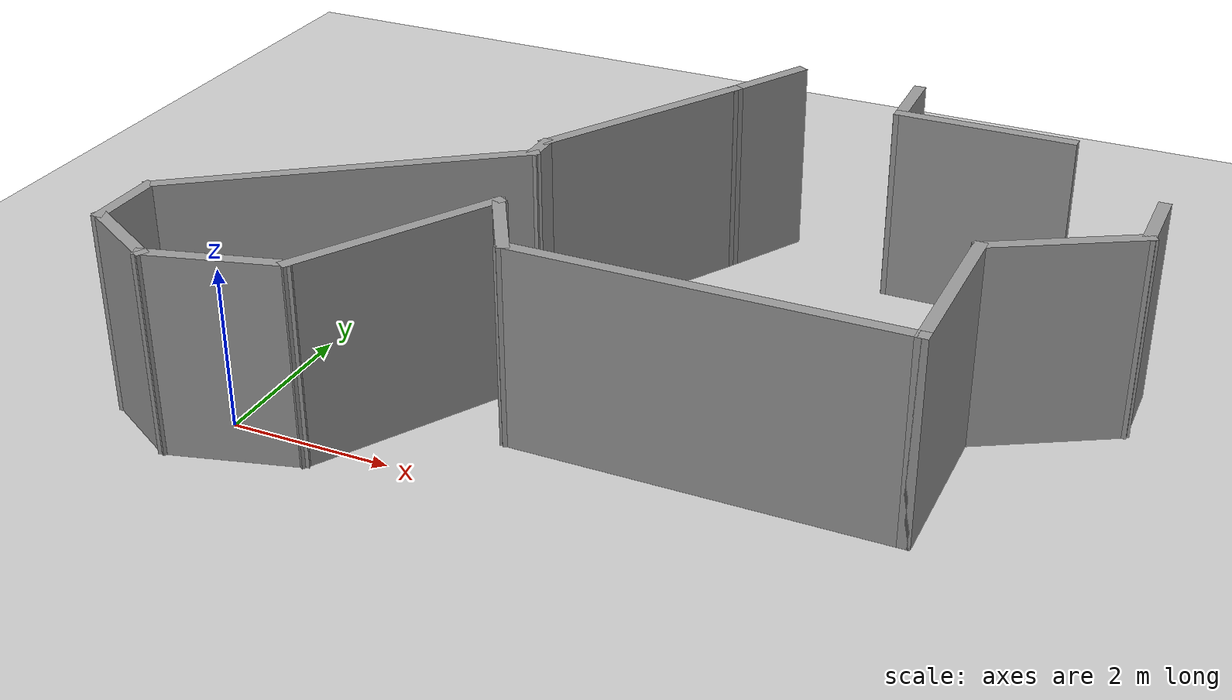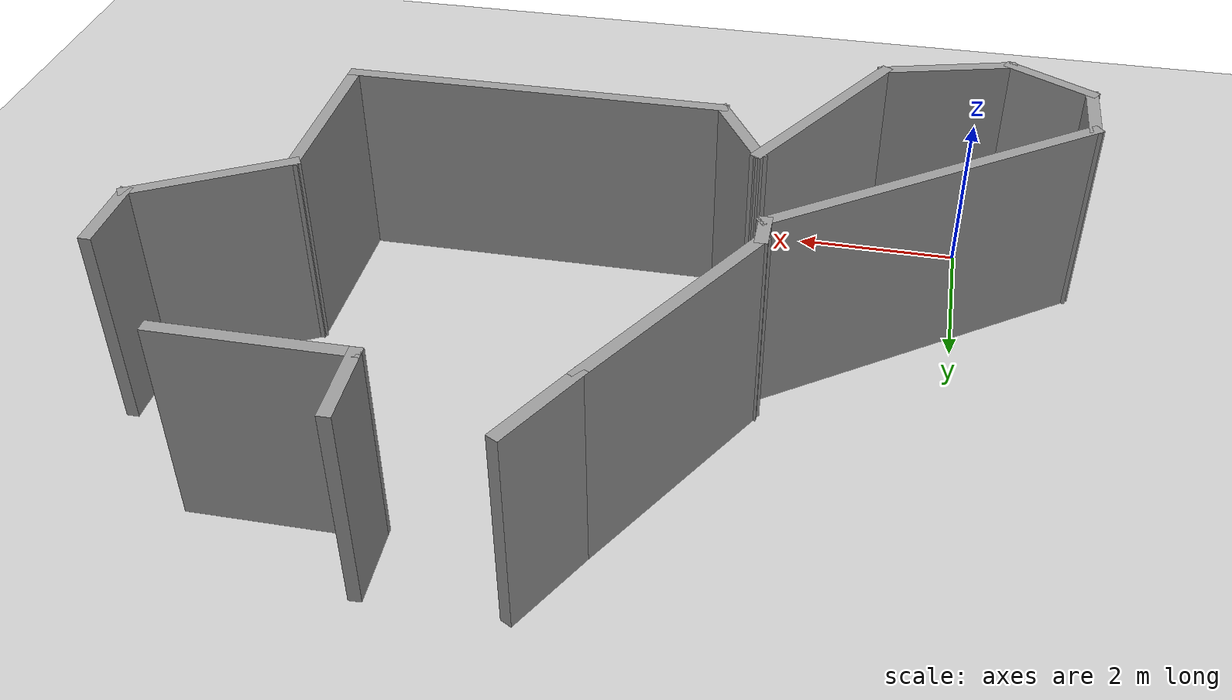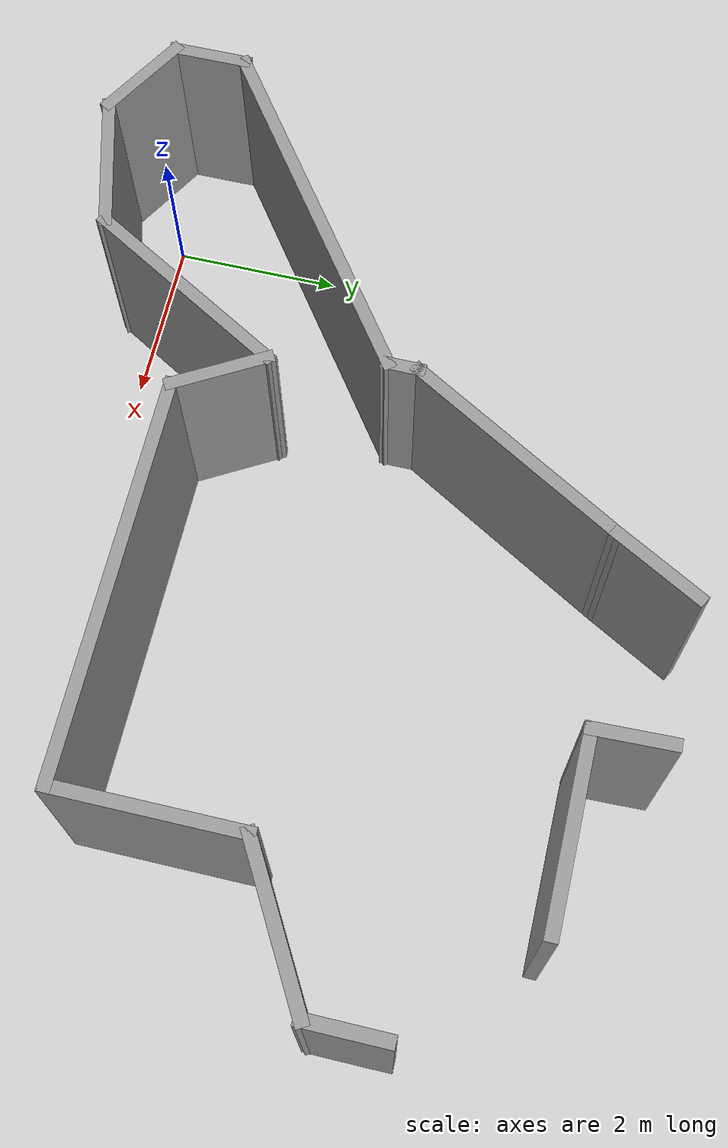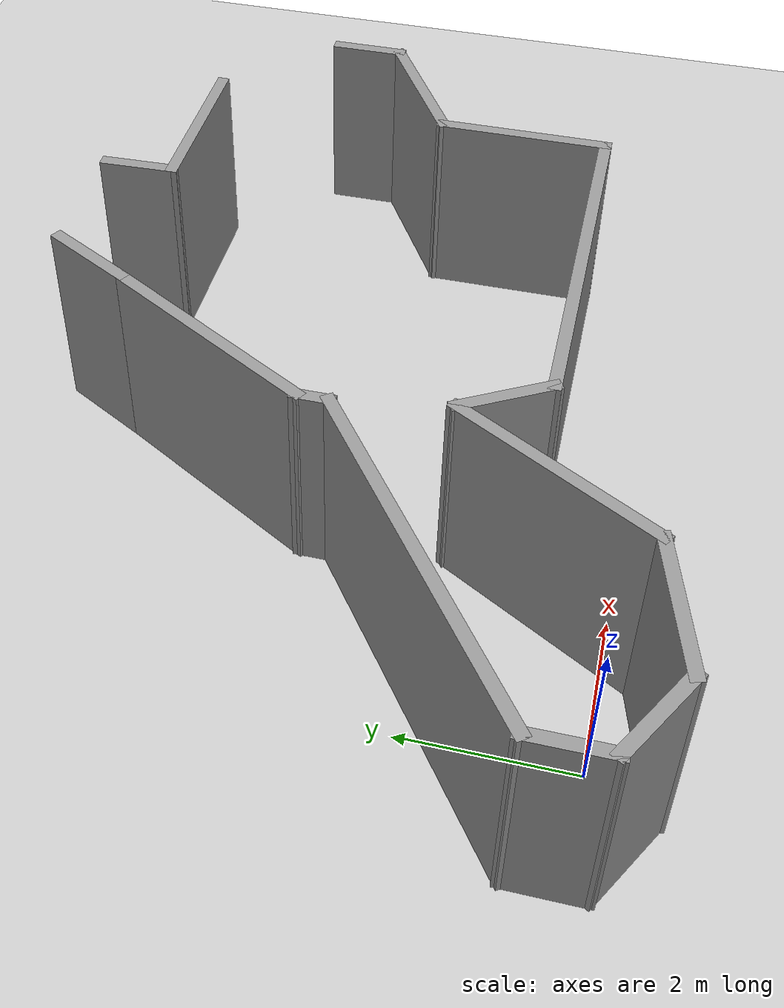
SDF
<sdf version="1.7">
 <world name="default">
  <light name="sun" type="directional">
   <pose>0 0 10 0 -0 0</pose>
   <diffuse>0.8 0.8 0.8 1</diffuse>
   <specular>0.2 0.2 0.2 1</specular>
   <attenuation>
    <range>1000</range>
    <constant>0.9</constant>
    <linear>0.01</linear>
    <quadratic>0.001</quadratic>
   </attenuation>
   <direction>-0.5 0.1 -0.9</direction>
   <spot><inner_angle>0</inner_angle><outer_angle>0</outer_angle><falloff>0</falloff></spot>
  </light>
  <model name="ground_plane">
   <static>1</static>
   <link name="link">
    <collision name="collision">
     <geometry><plane><normal>0 0 1</normal><size>100 100</size></plane></geometry>
     <surface>
      <contact><collide_bitmask>65535</collide_bitmask></contact>
      <friction><ode><mu>100</mu><mu2>50</mu2></ode></friction>
     </surface>
    </collision>
    <visual name="visual">
     <cast_shadows>0</cast_shadows>
     <geometry><plane><normal>0 0 1</normal><size>100 100</size></plane></geometry>
     <material>
      <script><uri>file://media/materials/scripts/gazebo.material</uri><name>Gazebo/Grey</name></script>
     </material>
    </visual>
   </link>
  </model>
  <gravity>0 0 -9.8</gravity>
  <magnetic_field>6e-06 2.3e-05 -4.2e-05</magnetic_field>
  <atmosphere type="adiabatic"/>
  <physics type="ode">
   <max_step_size>0.001</max_step_size>
   <real_time_factor>1</real_time_factor>
   <real_time_update_rate>1000</real_time_update_rate>
  </physics>
  <scene><ambient>0.4 0.4 0.4 1</ambient><background>0.7 0.7 0.7 1</background><shadows>1</shadows></scene>
  <spherical_coordinates>
   <surface_model>EARTH_WGS84</surface_model>
   <latitude_deg>0</latitude_deg>
   <longitude_deg>0</longitude_deg>
   <elevation>0</elevation>
   <heading_deg>0</heading_deg>
  </spherical_coordinates>
  <model name="mybuilding">
   <pose>3.93859 3.12076 0 0 -0 0</pose>
   <link name="Wall_14">
    <collision name="Wall_14_Collision">
     <geometry><box><size>4.75 0.15 2.5</size></box></geometry>
     <pose>0 0 1.25 0 -0 0</pose>
    </collision>
    <visual name="Wall_14_Visual">
     <pose>0 0 1.25 0 -0 0</pose>
     <geometry><box><size>4.75 0.15 2.5</size></box></geometry>
     <material>
      <script><uri>file://media/materials/scripts/gazebo.material</uri><name>Gazebo/Grey</name></script>
      <ambient>1 1 1 1</ambient>
     </material>
     <meta><layer>0</layer></meta>
    </visual>
    <pose>1.37411 -2.1597 0 0 -0 0</pose>
   </link>
   <link name="Wall_15">
    <collision name="Wall_15_Collision">
     <geometry><box><size>2.25 0.15 2.5</size></box></geometry>
     <pose>0 0 1.25 0 -0 0</pose>
    </collision>
    <visual name="Wall_15_Visual">
     <pose>0 0 1.25 0 -0 0</pose>
     <geometry><box><size>2.25 0.15 2.5</size></box></geometry>
     <material>
      <script><uri>file://media/materials/scripts/gazebo.material</uri><name>Gazebo/Grey</name></script>
      <ambient>1 1 1 1</ambient>
     </material>
     <meta><layer>0</layer></meta>
    </visual>
    <pose>3.67411 -1.1097 0 0 -0 1.5708</pose>
   </link>
   <link name="Wall_16">
    <collision name="Wall_16_Collision">
     <geometry><box><size>2 0.15 2.5</size></box></geometry>
     <pose>0 0 1.25 0 -0 0</pose>
    </collision>
    <visual name="Wall_16_Visual">
     <pose>0 0 1.25 0 -0 0</pose>
     <geometry><box><size>2 0.15 2.5</size></box></geometry>
     <material>
      <script><uri>file://media/materials/scripts/gazebo.material</uri><name>Gazebo/Grey</name></script>
      <ambient>1 1 1 1</ambient>
     </material>
     <meta><layer>0</layer></meta>
    </visual>
    <pose>4.47518 0.402801 0 0 -0 0.523599</pose>
   </link>
   <link name="Wall_17">
    <collision name="Wall_17_Collision">
     <geometry><box><size>1 0.15 2.5</size></box></geometry>
     <pose>0 0 1.25 0 -0 0</pose>
    </collision>
    <visual name="Wall_17_Visual">
     <pose>0 0 1.25 0 -0 0</pose>
     <geometry><box><size>1 0.15 2.5</size></box></geometry>
     <material>
      <script><uri>file://media/materials/scripts/gazebo.material</uri><name>Gazebo/Grey</name></script>
      <ambient>1 1 1 1</ambient>
     </material>
     <meta><layer>0</layer></meta>
    </visual>
    <pose>5.27626 1.2903 0 0 -0 1.5708</pose>
   </link>
   <link name="Wall_19">
    <collision name="Wall_19_Collision">
     <geometry><box><size>2.25 0.15 2.5</size></box></geometry>
     <pose>0 0 1.25 0 -0 0</pose>
    </collision>
    <visual name="Wall_19_Visual">
     <pose>0 0 1.25 0 -0 0</pose>
     <geometry><box><size>2.25 0.15 2.5</size></box></geometry>
     <material>
      <script><uri>file://media/materials/scripts/gazebo.material</uri><name>Gazebo/Grey</name></script>
      <ambient>1 1 1 1</ambient>
     </material>
     <meta><layer>0</layer></meta>
    </visual>
    <pose>2.91811 3.02345 0 0 -0 3.14159</pose>
   </link>
   <link name="Wall_20">
    <collision name="Wall_20_Collision">
     <geometry><box><size>1 0.15 2.5</size></box></geometry>
     <pose>0 0 1.25 0 -0 0</pose>
    </collision>
    <visual name="Wall_20_Visual">
     <pose>0 0 1.25 0 -0 0</pose>
     <geometry><box><size>1 0.15 2.5</size></box></geometry>
     <material>
      <script><uri>file://media/materials/scripts/gazebo.material</uri><name>Gazebo/Grey</name></script>
      <ambient>1 1 1 1</ambient>
     </material>
     <meta><layer>0</layer></meta>
    </visual>
    <pose>1.85488 3.44845 0 0 -0 1.6019</pose>
   </link>
   <link name="Wall_22">
    <collision name="Wall_22_Collision">
     <geometry><box><size>1.23702 0.15 2.5</size></box></geometry>
     <pose>0 0 1.25 0 -0 0</pose>
    </collision>
    <visual name="Wall_22_Visual">
     <pose>0 0 1.25 0 -0 0</pose>
     <geometry><box><size>1.23702 0.15 2.5</size></box></geometry>
     <material>
      <script><uri>file://media/materials/scripts/gazebo.material</uri><name>Gazebo/Grey</name></script>
      <ambient>1 1 1 1</ambient>
     </material>
     <meta><layer>0</layer></meta>
    </visual>
    <pose>-0.020115 3.39714 0 0 -0 -2.07332</pose>
   </link>
   <link name="Wall_23">
    <collision name="Wall_23_Collision">
     <geometry><box><size>3 0.15 2.5</size></box></geometry>
     <pose>0 0 1.25 0 -0 0</pose>
    </collision>
    <visual name="Wall_23_Visual">
     <pose>0 0 1.25 0 -0 0</pose>
     <geometry><box><size>3 0.15 2.5</size></box></geometry>
     <material>
      <script><uri>file://media/materials/scripts/gazebo.material</uri><name>Gazebo/Grey</name></script>
      <ambient>1 1 1 1</ambient>
     </material>
     <meta><layer>0</layer></meta>
    </visual>
    <pose>-0.99439 1.68674 0 0 -0 -2.0944</pose>
   </link>
   <link name="Wall_24">
    <collision name="Wall_24_Collision">
     <geometry><box><size>0.5 0.15 2.5</size></box></geometry>
     <pose>0 0 1.25 0 -0 0</pose>
    </collision>
    <visual name="Wall_24_Visual">
     <pose>0 0 1.25 0 -0 0</pose>
     <geometry><box><size>0.5 0.15 2.5</size></box></geometry>
     <material>
      <script><uri>file://media/materials/scripts/gazebo.material</uri><name>Gazebo/Grey</name></script>
      <ambient>1 1 1 1</ambient>
     </material>
     <meta><layer>0</layer></meta>
    </visual>
    <pose>-1.70689 0.277649 0 0 -0 -1.5708</pose>
   </link>
   <link name="Wall_26">
    <collision name="Wall_26_Collision">
     <geometry><box><size>1.25 0.15 2.5</size></box></geometry>
     <pose>0 0 1.25 0 -0 0</pose>
    </collision>
    <visual name="Wall_26_Visual">
     <pose>0 0 1.25 0 -0 0</pose>
     <geometry><box><size>1.25 0.15 2.5</size></box></geometry>
     <material>
      <script><uri>file://media/materials/scripts/gazebo.material</uri><name>Gazebo/Grey</name></script>
      <ambient>1 1 1 1</ambient>
     </material>
     <meta><layer>0</layer></meta>
    </visual>
    <pose>-1.20089 -1.68338 0 0 -0 2.0944</pose>
   </link>
   <link name="Wall_28">
    <collision name="Wall_28_Collision">
     <geometry><box><size>2.75 0.15 2.5</size></box></geometry>
     <pose>0 0 1.25 0 -0 0</pose>
    </collision>
    <visual name="Wall_28_Visual">
     <pose>0 0 1.25 0 -0 0</pose>
     <geometry><box><size>2.75 0.15 2.5</size></box></geometry>
     <material>
      <script><uri>file://media/materials/scripts/gazebo.material</uri><name>Gazebo/Grey</name></script>
      <ambient>1 1 1 1</ambient>
     </material>
     <meta><layer>0</layer></meta>
    </visual>
    <pose>-2.12589 -2.3329 0 0 -0 -2.0944</pose>
   </link>
   <link name="Wall_29">
    <collision name="Wall_29_Collision">
     <geometry><box><size>1.75 0.15 2.5</size></box></geometry>
     <pose>0 0 1.25 0 -0 0</pose>
    </collision>
    <visual name="Wall_29_Visual">
     <pose>0 0 1.25 0 -0 0</pose>
     <geometry><box><size>1.75 0.15 2.5</size></box></geometry>
     <material>
      <script><uri>file://media/materials/scripts/gazebo.material</uri><name>Gazebo/Grey</name></script>
      <ambient>1 1 1 1</ambient>
     </material>
     <meta><layer>0</layer></meta>
    </visual>
    <pose>-3.54863 -3.66579 0 0 -0 -2.87979</pose>
   </link>
   <link name="Wall_30">
    <collision name="Wall_30_Collision">
     <geometry><box><size>1.25 0.15 2.5</size></box></geometry>
     <pose>0 0 1.25 0 -0 0</pose>
    </collision>
    <visual name="Wall_30_Visual">
     <pose>0 0 1.25 0 -0 0</pose>
     <geometry><box><size>1.25 0.15 2.5</size></box></geometry>
     <material>
      <script><uri>file://media/materials/scripts/gazebo.material</uri><name>Gazebo/Grey</name></script>
      <ambient>1 1 1 1</ambient>
     </material>
     <meta><layer>0</layer></meta>
    </visual>
    <pose>-4.79769 -3.59785 0 0 -0 2.61799</pose>
   </link>
   <link name="Wall_31">
    <collision name="Wall_31_Collision">
     <geometry><box><size>1 0.15 2.5</size></box></geometry>
     <pose>0 0 1.25 0 -0 0</pose>
    </collision>
    <visual name="Wall_31_Visual">
     <pose>0 0 1.25 0 -0 0</pose>
     <geometry><box><size>1 0.15 2.5</size></box></geometry>
     <material>
      <script><uri>file://media/materials/scripts/gazebo.material</uri><name>Gazebo/Grey</name></script>
      <ambient>1 1 1 1</ambient>
     </material>
     <meta><layer>0</layer></meta>
    </visual>
    <pose>-5.274 -2.89785 0 0 -0 1.5708</pose>
   </link>
   <link name="Wall_32">
    <collision name="Wall_32_Collision">
     <geometry><box><size>4.54971 0.15 2.5</size></box></geometry>
     <pose>0 0 1.25 0 -0 0</pose>
    </collision>
    <visual name="Wall_32_Visual">
     <pose>0 0 1.25 0 -0 0</pose>
     <geometry><box><size>4.54971 0.15 2.5</size></box></geometry>
     <material>
      <script><uri>file://media/materials/scripts/gazebo.material</uri><name>Gazebo/Grey</name></script>
      <ambient>1 1 1 1</ambient>
     </material>
     <meta><layer>0</layer></meta>
    </visual>
    <pose>-3.49044 -1.1851 0 0 -0 0.625347</pose>
   </link>
   <static>1</static>
  </model>
 </world>
</sdf>
